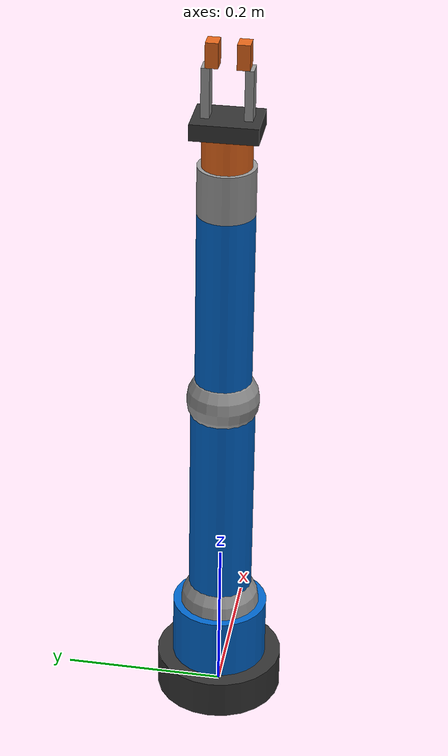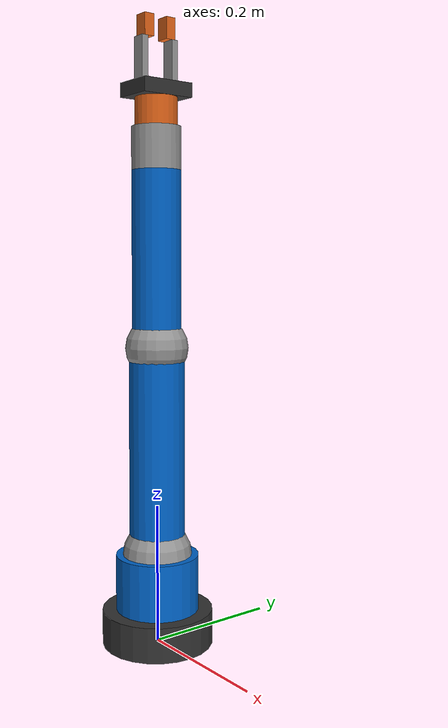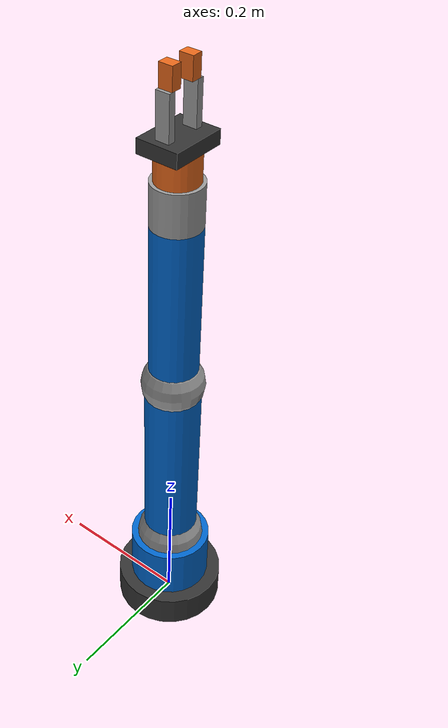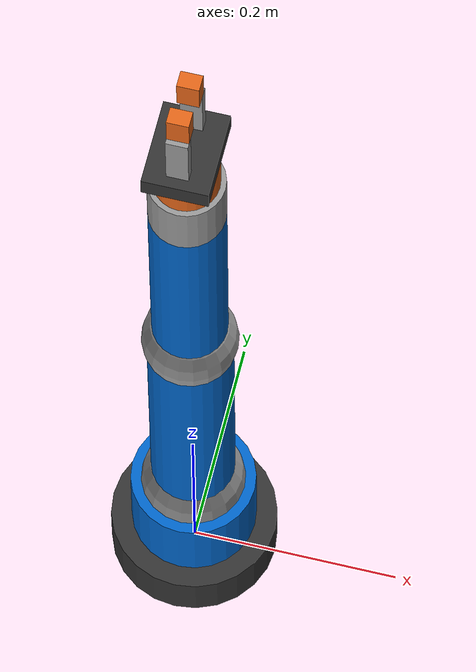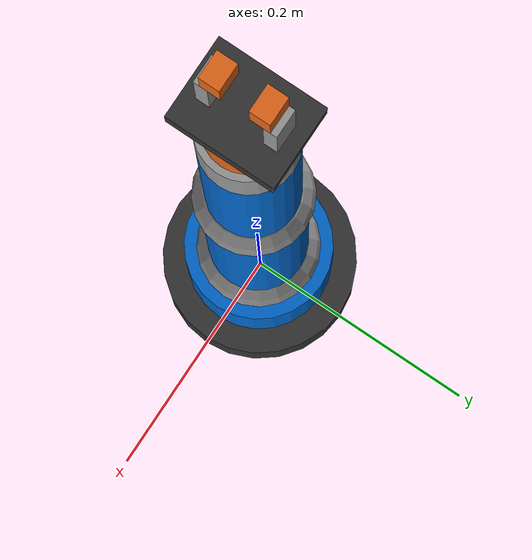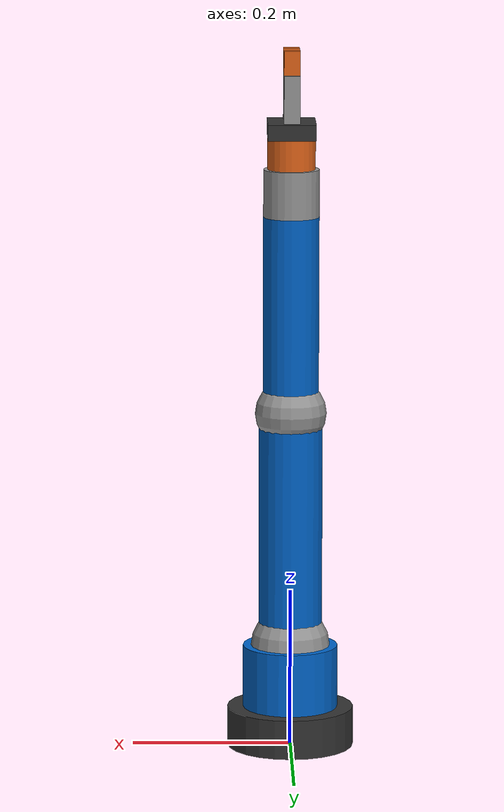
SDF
<?xml version="1.0"?>
<sdf version="1.8">
  <model name="arm_5dof">

    <!-- Fix the robot base to the world (table) -->
    <joint name="world_joint" type="fixed">
      <parent>world</parent>
      <child>base_link</child>
    </joint>

    <!-- ==================== BASE ==================== -->
    <link name="base_link">
      <inertial>
        <mass>2.0</mass>
        <pose>0 0 0.025 0 0 0</pose>
        <inertia>
          <ixx>0.003</ixx><iyy>0.003</iyy><izz>0.005</izz>
        </inertia>
      </inertial>
      <visual name="visual">
        <pose>0 0 0.025 0 0 0</pose>
        <geometry>
          <cylinder><radius>0.08</radius><length>0.05</length></cylinder>
        </geometry>
        <material>
          <ambient>0.2 0.2 0.2 1</ambient>
          <diffuse>0.2 0.2 0.2 1</diffuse>
        </material>
      </visual>
      <collision name="collision">
        <pose>0 0 0.025 0 0 0</pose>
        <geometry>
          <cylinder><radius>0.08</radius><length>0.05</length></cylinder>
        </geometry>
      </collision>
    </link>

    <!-- ==================== SHOULDER ==================== -->
    <link name="shoulder_link">
      <pose relative_to="shoulder_pan_joint">0 0 0 0 0 0</pose>
      <inertial>
        <mass>1.5</mass>
        <pose>0 0 0.04 0 0 0</pose>
        <inertia>
          <ixx>0.002</ixx><iyy>0.002</iyy><izz>0.003</izz>
        </inertia>
      </inertial>
      <visual name="visual">
        <pose>0 0 0.04 0 0 0</pose>
        <geometry>
          <cylinder><radius>0.06</radius><length>0.08</length></cylinder>
        </geometry>
        <material>
          <ambient>0.0 0.4 0.8 1</ambient>
          <diffuse>0.0 0.4 0.8 1</diffuse>
        </material>
      </visual>
      <collision name="collision">
        <pose>0 0 0.04 0 0 0</pose>
        <geometry>
          <cylinder><radius>0.06</radius><length>0.08</length></cylinder>
        </geometry>
      </collision>
    </link>

    <joint name="shoulder_pan_joint" type="revolute">
      <parent>base_link</parent>
      <child>shoulder_link</child>
      <pose relative_to="base_link">0 0 0.05 0 0 0</pose>
      <axis>
        <xyz>0 0 1</xyz>
        <limit>
          <lower>-3.14159</lower>
          <upper>3.14159</upper>
          <effort>100</effort>
          <velocity>1.0</velocity>
        </limit>
        <dynamics>
          <damping>0.5</damping>
          <friction>0.1</friction>
        </dynamics>
      </axis>
    </joint>

    <!-- ==================== UPPER ARM ==================== -->
    <link name="upper_arm_link">
      <pose relative_to="shoulder_lift_joint">0 0 0 0 0 0</pose>
      <inertial>
        <mass>1.2</mass>
        <pose>0 0 0.1 0 0 0</pose>
        <inertia>
          <ixx>0.01</ixx><iyy>0.01</iyy><izz>0.001</izz>
        </inertia>
      </inertial>
      <visual name="joint_housing">
        <geometry>
          <sphere><radius>0.05</radius></sphere>
        </geometry>
        <material>
          <ambient>0.6 0.6 0.6 1</ambient>
          <diffuse>0.6 0.6 0.6 1</diffuse>
        </material>
      </visual>
      <visual name="arm_segment">
        <pose>0 0 0.15 0 0 0</pose>
        <geometry>
          <cylinder><radius>0.04</radius><length>0.3</length></cylinder>
        </geometry>
        <material>
          <ambient>0.0 0.4 0.8 1</ambient>
          <diffuse>0.0 0.4 0.8 1</diffuse>
        </material>
      </visual>
      <collision name="joint_collision">
        <geometry>
          <sphere><radius>0.05</radius></sphere>
        </geometry>
      </collision>
      <collision name="arm_collision">
        <pose>0 0 0.15 0 0 0</pose>
        <geometry>
          <cylinder><radius>0.04</radius><length>0.3</length></cylinder>
        </geometry>
      </collision>
    </link>

    <joint name="shoulder_lift_joint" type="revolute">
      <parent>shoulder_link</parent>
      <child>upper_arm_link</child>
      <pose relative_to="shoulder_link">0 0 0.08 0 0 0</pose>
      <axis>
        <xyz>0 1 0</xyz>
        <limit>
          <lower>-3.14159</lower>
          <upper>3.14159</upper>
          <effort>100</effort>
          <velocity>1.0</velocity>
        </limit>
        <dynamics>
          <damping>0.5</damping>
          <friction>0.1</friction>
        </dynamics>
      </axis>
    </joint>

    <!-- ==================== FOREARM ==================== -->
    <link name="forearm_link">
      <pose relative_to="elbow_joint">0 0 0 0 0 0</pose>
      <inertial>
        <mass>0.8</mass>
        <pose>0 0 0.08 0 0 0</pose>
        <inertia>
          <ixx>0.005</ixx><iyy>0.005</iyy><izz>0.0008</izz>
        </inertia>
      </inertial>
      <visual name="joint_housing">
        <geometry>
          <sphere><radius>0.045</radius></sphere>
        </geometry>
        <material>
          <ambient>0.6 0.6 0.6 1</ambient>
          <diffuse>0.6 0.6 0.6 1</diffuse>
        </material>
      </visual>
      <visual name="arm_segment">
        <pose>0 0 0.125 0 0 0</pose>
        <geometry>
          <cylinder><radius>0.035</radius><length>0.25</length></cylinder>
        </geometry>
        <material>
          <ambient>0.0 0.4 0.8 1</ambient>
          <diffuse>0.0 0.4 0.8 1</diffuse>
        </material>
      </visual>
      <collision name="joint_collision">
        <geometry>
          <sphere><radius>0.045</radius></sphere>
        </geometry>
      </collision>
      <collision name="arm_collision">
        <pose>0 0 0.125 0 0 0</pose>
        <geometry>
          <cylinder><radius>0.035</radius><length>0.25</length></cylinder>
        </geometry>
      </collision>
    </link>

    <joint name="elbow_joint" type="revolute">
      <parent>upper_arm_link</parent>
      <child>forearm_link</child>
      <pose relative_to="upper_arm_link">0 0 0.3 0 0 0</pose>
      <axis>
        <xyz>0 1 0</xyz>
        <limit>
          <lower>-3.14159</lower>
          <upper>3.14159</upper>
          <effort>100</effort>
          <velocity>1.0</velocity>
        </limit>
        <dynamics>
          <damping>0.5</damping>
          <friction>0.1</friction>
        </dynamics>
      </axis>
    </joint>

    <!-- ==================== WRIST 1 ==================== -->
    <link name="wrist_1_link">
      <pose relative_to="wrist_1_joint">0 0 0 0 0 0</pose>
      <inertial>
        <mass>0.4</mass>
        <pose>0 0 0.03 0 0 0</pose>
        <inertia>
          <ixx>0.0003</ixx><iyy>0.0003</iyy><izz>0.0002</izz>
        </inertia>
      </inertial>
      <visual name="visual">
        <pose>0 0 0.03 0 0 0</pose>
        <geometry>
          <cylinder><radius>0.035</radius><length>0.06</length></cylinder>
        </geometry>
        <material>
          <ambient>0.6 0.6 0.6 1</ambient>
          <diffuse>0.6 0.6 0.6 1</diffuse>
        </material>
      </visual>
      <collision name="collision">
        <pose>0 0 0.03 0 0 0</pose>
        <geometry>
          <cylinder><radius>0.035</radius><length>0.06</length></cylinder>
        </geometry>
      </collision>
    </link>

    <joint name="wrist_1_joint" type="revolute">
      <parent>forearm_link</parent>
      <child>wrist_1_link</child>
      <pose relative_to="forearm_link">0 0 0.25 0 0 0</pose>
      <axis>
        <xyz>0 1 0</xyz>
        <limit>
          <lower>-3.14159</lower>
          <upper>3.14159</upper>
          <effort>50</effort>
          <velocity>1.5</velocity>
        </limit>
        <dynamics>
          <damping>0.3</damping>
          <friction>0.05</friction>
        </dynamics>
      </axis>
    </joint>

    <!-- ==================== WRIST 2 ==================== -->
    <link name="wrist_2_link">
      <pose relative_to="wrist_2_joint">0 0 0 0 0 0</pose>
      <inertial>
        <mass>0.3</mass>
        <pose>0 0 0.02 0 0 0</pose>
        <inertia>
          <ixx>0.0002</ixx><iyy>0.0002</iyy><izz>0.0001</izz>
        </inertia>
      </inertial>
      <visual name="visual">
        <pose>0 0 0.02 0 0 0</pose>
        <geometry>
          <cylinder><radius>0.03</radius><length>0.04</length></cylinder>
        </geometry>
        <material>
          <ambient>0.9 0.4 0.1 1</ambient>
          <diffuse>0.9 0.4 0.1 1</diffuse>
        </material>
      </visual>
      <collision name="collision">
        <pose>0 0 0.02 0 0 0</pose>
        <geometry>
          <cylinder><radius>0.03</radius><length>0.04</length></cylinder>
        </geometry>
      </collision>
    </link>

    <joint name="wrist_2_joint" type="revolute">
      <parent>wrist_1_link</parent>
      <child>wrist_2_link</child>
      <pose relative_to="wrist_1_link">0 0 0.06 0 0 0</pose>
      <axis>
        <xyz>0 0 1</xyz>
        <limit>
          <lower>-3.14159</lower>
          <upper>3.14159</upper>
          <effort>50</effort>
          <velocity>1.5</velocity>
        </limit>
        <dynamics>
          <damping>0.3</damping>
          <friction>0.05</friction>
        </dynamics>
      </axis>
    </joint>

    <!-- ==================== GRIPPER BASE ==================== -->
    <link name="gripper_base_link">
      <pose relative_to="wrist_2_link">0 0 0.04 0 0 0</pose>
      <inertial>
        <mass>0.2</mass>
        <pose>0 0 0.01 0 0 0</pose>
        <inertia>
          <ixx>0.0001</ixx><iyy>0.0001</iyy><izz>0.0001</izz>
        </inertia>
      </inertial>
      <visual name="visual">
        <pose>0 0 0.01 0 0 0</pose>
        <geometry>
          <box><size>0.06 0.08 0.02</size></box>
        </geometry>
        <material>
          <ambient>0.2 0.2 0.2 1</ambient>
          <diffuse>0.2 0.2 0.2 1</diffuse>
        </material>
      </visual>
      <collision name="collision">
        <pose>0 0 0.01 0 0 0</pose>
        <geometry>
          <box><size>0.06 0.08 0.02</size></box>
        </geometry>
      </collision>
    </link>

    <joint name="gripper_base_joint" type="fixed">
      <parent>wrist_2_link</parent>
      <child>gripper_base_link</child>
    </joint>

    <!-- ==================== LEFT FINGER ==================== -->
    <link name="gripper_left_finger">
      <pose relative_to="gripper_left_joint">0 0 0 0 0 0</pose>
      <inertial>
        <mass>0.05</mass>
        <pose>0 0 0.05 0 0 0</pose>
        <inertia>
          <ixx>0.00002</ixx><iyy>0.00002</iyy><izz>0.00001</izz>
        </inertia>
      </inertial>
      <visual name="finger_base">
        <pose>0 0.005 0.03 0 0 0</pose>
        <geometry>
          <box><size>0.02 0.01 0.06</size></box>
        </geometry>
        <material>
          <ambient>0.6 0.6 0.6 1</ambient>
          <diffuse>0.6 0.6 0.6 1</diffuse>
        </material>
      </visual>
      <visual name="finger_tip">
        <pose>0 -0.002 0.075 0 0 0</pose>
        <geometry>
          <box><size>0.02 0.015 0.03</size></box>
        </geometry>
        <material>
          <ambient>0.9 0.4 0.1 1</ambient>
          <diffuse>0.9 0.4 0.1 1</diffuse>
        </material>
      </visual>
      <collision name="base_collision">
        <pose>0 0.005 0.03 0 0 0</pose>
        <geometry>
          <box><size>0.02 0.01 0.06</size></box>
        </geometry>
      </collision>
      <collision name="tip_collision">
        <pose>0 -0.002 0.075 0 0 0</pose>
        <geometry>
          <box><size>0.02 0.015 0.03</size></box>
        </geometry>
      </collision>
    </link>

    <joint name="gripper_left_joint" type="prismatic">
      <parent>gripper_base_link</parent>
      <child>gripper_left_finger</child>
      <pose relative_to="gripper_base_link">0 0.02 0.02 0 0 0</pose>
      <axis>
        <xyz>0 1 0</xyz>
        <limit>
          <lower>0</lower>
          <upper>0.03</upper>
          <effort>20</effort>
          <velocity>0.5</velocity>
        </limit>
        <dynamics>
          <damping>0.1</damping>
          <friction>0.05</friction>
        </dynamics>
      </axis>
    </joint>

    <!-- ==================== RIGHT FINGER ==================== -->
    <link name="gripper_right_finger">
      <pose relative_to="gripper_right_joint">0 0 0 0 0 0</pose>
      <inertial>
        <mass>0.05</mass>
        <pose>0 0 0.05 0 0 0</pose>
        <inertia>
          <ixx>0.00002</ixx><iyy>0.00002</iyy><izz>0.00001</izz>
        </inertia>
      </inertial>
      <visual name="finger_base">
        <pose>0 -0.005 0.03 0 0 0</pose>
        <geometry>
          <box><size>0.02 0.01 0.06</size></box>
        </geometry>
        <material>
          <ambient>0.6 0.6 0.6 1</ambient>
          <diffuse>0.6 0.6 0.6 1</diffuse>
        </material>
      </visual>
      <visual name="finger_tip">
        <pose>0 0.002 0.075 0 0 0</pose>
        <geometry>
          <box><size>0.02 0.015 0.03</size></box>
        </geometry>
        <material>
          <ambient>0.9 0.4 0.1 1</ambient>
          <diffuse>0.9 0.4 0.1 1</diffuse>
        </material>
      </visual>
      <collision name="base_collision">
        <pose>0 -0.005 0.03 0 0 0</pose>
        <geometry>
          <box><size>0.02 0.01 0.06</size></box>
        </geometry>
      </collision>
      <collision name="tip_collision">
        <pose>0 0.002 0.075 0 0 0</pose>
        <geometry>
          <box><size>0.02 0.015 0.03</size></box>
        </geometry>
      </collision>
    </link>

    <joint name="gripper_right_joint" type="prismatic">
      <parent>gripper_base_link</parent>
      <child>gripper_right_finger</child>
      <pose relative_to="gripper_base_link">0 -0.02 0.02 0 0 0</pose>
      <axis>
        <xyz>0 -1 0</xyz>
        <limit>
          <lower>0</lower>
          <upper>0.03</upper>
          <effort>20</effort>
          <velocity>0.5</velocity>
        </limit>
        <dynamics>
          <damping>0.1</damping>
          <friction>0.05</friction>
        </dynamics>
      </axis>
    </joint>

    <!-- ==================== TCP (Tool Center Point) ==================== -->
    <link name="tcp">
      <pose relative_to="gripper_base_link">0 0 0.11 0 0 0</pose>
      <inertial>
        <mass>0.001</mass>
        <inertia>
          <ixx>0.000001</ixx><iyy>0.000001</iyy><izz>0.000001</izz>
        </inertia>
      </inertial>
    </link>

    <joint name="tcp_joint" type="fixed">
      <parent>gripper_base_link</parent>
      <child>tcp</child>
    </joint>

    <!-- ==================== JOINT POSITION CONTROLLERS ==================== -->
    <plugin filename="gz-sim-joint-position-controller-system" name="gz::sim::systems::JointPositionController">
      <joint_name>shoulder_pan_joint</joint_name>
      <p_gain>1000</p_gain>
      <i_gain>10</i_gain>
      <d_gain>100</d_gain>
    </plugin>

    <plugin filename="gz-sim-joint-position-controller-system" name="gz::sim::systems::JointPositionController">
      <joint_name>shoulder_lift_joint</joint_name>
      <p_gain>1500</p_gain>
      <i_gain>15</i_gain>
      <d_gain>150</d_gain>
    </plugin>

    <plugin filename="gz-sim-joint-position-controller-system" name="gz::sim::systems::JointPositionController">
      <joint_name>elbow_joint</joint_name>
      <p_gain>1000</p_gain>
      <i_gain>10</i_gain>
      <d_gain>100</d_gain>
    </plugin>

    <plugin filename="gz-sim-joint-position-controller-system" name="gz::sim::systems::JointPositionController">
      <joint_name>wrist_1_joint</joint_name>
      <p_gain>500</p_gain>
      <i_gain>5</i_gain>
      <d_gain>50</d_gain>
    </plugin>

    <plugin filename="gz-sim-joint-position-controller-system" name="gz::sim::systems::JointPositionController">
      <joint_name>wrist_2_joint</joint_name>
      <p_gain>500</p_gain>
      <i_gain>5</i_gain>
      <d_gain>50</d_gain>
    </plugin>

    <plugin filename="gz-sim-joint-position-controller-system" name="gz::sim::systems::JointPositionController">
      <joint_name>gripper_left_joint</joint_name>
      <p_gain>200</p_gain>
      <i_gain>2</i_gain>
      <d_gain>20</d_gain>
    </plugin>

    <plugin filename="gz-sim-joint-position-controller-system" name="gz::sim::systems::JointPositionController">
      <joint_name>gripper_right_joint</joint_name>
      <p_gain>200</p_gain>
      <i_gain>2</i_gain>
      <d_gain>20</d_gain>
    </plugin>

    <!-- Joint State Publisher -->
    <plugin filename="gz-sim-joint-state-publisher-system" name="gz::sim::systems::JointStatePublisher">
      <joint_name>shoulder_pan_joint</joint_name>
      <joint_name>shoulder_lift_joint</joint_name>
      <joint_name>elbow_joint</joint_name>
      <joint_name>wrist_1_joint</joint_name>
      <joint_name>wrist_2_joint</joint_name>
      <joint_name>gripper_left_joint</joint_name>
      <joint_name>gripper_right_joint</joint_name>
    </plugin>

  </model>
</sdf>
